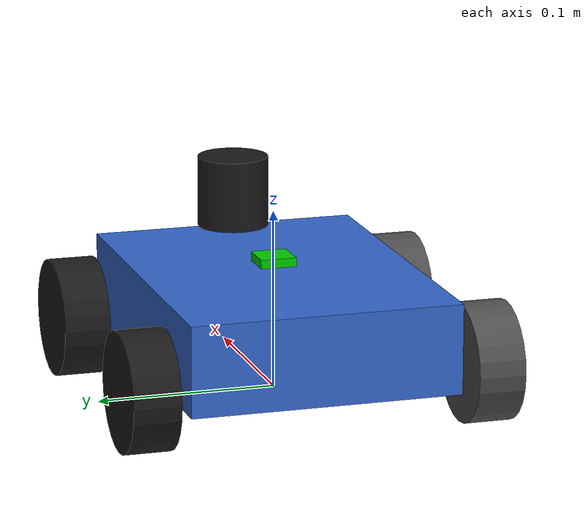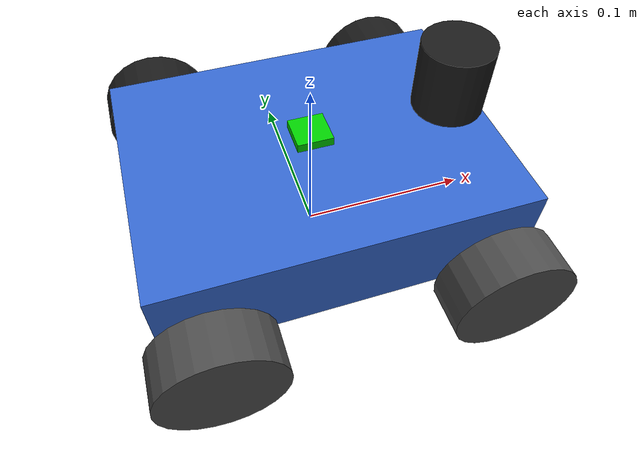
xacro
<?xml version="1.0"?>
<robot name="yahboom_car" xmlns:xacro="http://www.ros.org/wiki/xacro">

  <xacro:property name="chassis_length" value="0.20"/>   <!-- 20cm -->
  <xacro:property name="chassis_width"  value="0.15"/>   <!-- 15cm -->
  <xacro:property name="chassis_height" value="0.05"/>   <!-- 5cm  -->
  <xacro:property name="chassis_mass"   value="1.0"/>    <!-- 1 kg -->

  <xacro:property name="wheel_radius"   value="0.033"/>  <!-- 3.3cm bán kính bánh -->
  <xacro:property name="wheel_width"    value="0.026"/>  <!-- 2.6cm độ dày bánh -->
  <xacro:property name="wheel_mass"     value="0.1"/>    <!-- 100g mỗi bánh -->

  <!-- Khoảng cách từ tâm chassis đến tâm bánh -->
  <xacro:property name="wheel_x_offset" value="0.075"/> <!-- tiến/lùi so với center -->
  <xacro:property name="wheel_y_offset" value="0.095"/> <!-- trái/phải so với center (A+B trong kinematics) -->
  <xacro:property name="wheel_z_offset" value="-0.015"/><!-- bánh thấp hơn chassis -->

  <!-- ============================================================
       MACRO TÍNH QUÁN TÍNH (Inertia)
       ============================================================ -->
  <xacro:macro name="box_inertia" params="m x y z">
    <inertia  ixx="${m*(y*y+z*z)/12}" ixy="0" ixz="0"
              iyy="${m*(x*x+z*z)/12}" iyz="0"
              izz="${m*(x*x+y*y)/12}"/>
  </xacro:macro>

  <xacro:macro name="cylinder_inertia" params="m r h">
    <inertia  ixx="${m*(3*r*r+h*h)/12}" ixy="0" ixz="0"
              iyy="${m*(3*r*r+h*h)/12}" iyz="0"
              izz="${m*r*r/2}"/>
  </xacro:macro>

  <xacro:macro name="wheel" params="prefix x_sign y_sign">
    <link name="wheel_${prefix}_link">
      <visual>
        <origin xyz="0 0 0" rpy="${pi/2} 0 0"/>
        <geometry>
          <cylinder radius="${wheel_radius}" length="${wheel_width}"/>
        </geometry>
        <material name="wheel_color_${prefix}">
          <!-- Bánh trái: đen, bánh phải: xám đậm -->
          <xacro:if value="${y_sign > 0}">
            <color rgba="0.1 0.1 0.1 1.0"/>
          </xacro:if>
          <xacro:unless value="${y_sign > 0}">
            <color rgba="0.3 0.3 0.3 1.0"/>
          </xacro:unless>
        </material>
      </visual>
      <collision>
        <origin xyz="0 0 0" rpy="${pi/2} 0 0"/>
        <geometry>
          <cylinder radius="${wheel_radius}" length="${wheel_width}"/>
        </geometry>
      </collision>
      <inertial>
        <origin xyz="0 0 0" rpy="${pi/2} 0 0"/>
        <mass value="${wheel_mass}"/>
        <xacro:cylinder_inertia m="${wheel_mass}" r="${wheel_radius}" h="${wheel_width}"/>
      </inertial>
    </link>

    <joint name="wheel_${prefix}_joint" type="continuous">
      <parent link="base_link"/>
      <child  link="wheel_${prefix}_link"/>
      <origin xyz="${x_sign * wheel_x_offset}
                   ${y_sign * wheel_y_offset}
                   ${wheel_z_offset}"
              rpy="0 0 0"/>
      <axis xyz="0 1 0"/>
      <!-- Giới hạn moment để tránh Gazebo unstable -->
      <limit effort="10.0" velocity="20.0"/>
      <dynamics damping="0.02" friction="0.1"/>
    </joint>

    <!-- Gazebo friction material cho bánh -->
    <gazebo reference="wheel_${prefix}_link">
      <mu1>1.5</mu1>
      <mu2>0.8</mu2>
      <kp>1e6</kp>
      <kd>1.0</kd>
      <material>Gazebo/DarkGray</material>
    </gazebo>
  </xacro:macro>

  <!-- ============================================================
       BASE LINK (CHASSIS)
       ============================================================ -->
  <link name="base_link">
    <visual>
      <origin xyz="0 0 0" rpy="0 0 0"/>
      <geometry>
        <box size="${chassis_length} ${chassis_width} ${chassis_height}"/>
      </geometry>
      <material name="chassis_blue">
        <color rgba="0.2 0.4 0.8 1.0"/>
      </material>
    </visual>
    <collision>
      <origin xyz="0 0 0" rpy="0 0 0"/>
      <geometry>
        <box size="${chassis_length} ${chassis_width} ${chassis_height}"/>
      </geometry>
    </collision>
    <inertial>
      <origin xyz="0 0 0" rpy="0 0 0"/>
      <mass value="${chassis_mass}"/>
      <xacro:box_inertia m="${chassis_mass}"
                          x="${chassis_length}"
                          y="${chassis_width}"
                          z="${chassis_height}"/>
    </inertial>
  </link>

  <gazebo reference="base_link">
    <material>Gazebo/Blue</material>
  </gazebo>

  <!-- Base footprint (gốc tọa độ robot trên mặt đất) -->
  <link name="base_footprint"/>
  <joint name="base_footprint_joint" type="fixed">
    <parent link="base_footprint"/>
    <child  link="base_link"/>
    <origin xyz="0 0 ${chassis_height/2 + wheel_radius + wheel_z_offset}" rpy="0 0 0"/>
  </joint>

  <xacro:wheel prefix="fl" x_sign=" 1" y_sign=" 1"/>  <!-- Motor1: trái trước  -->
  <xacro:wheel prefix="rl" x_sign="-1" y_sign=" 1"/>  <!-- Motor2: trái sau    -->
  <xacro:wheel prefix="fr" x_sign=" 1" y_sign="-1"/>  <!-- Motor3: phải trước  -->
  <xacro:wheel prefix="rr" x_sign="-1" y_sign="-1"/>  <!-- Motor4: phải sau    -->

  <!-- ============================================================
       IMU LINK (MPU6050 trong hệ thật)
       ============================================================ -->
  <link name="imu_link">
    <visual>
      <origin xyz="0 0 0" rpy="0 0 0"/>
      <geometry>
        <box size="0.02 0.02 0.005"/>
      </geometry>
      <material name="imu_green">
        <color rgba="0.0 0.8 0.0 1.0"/>
      </material>
    </visual>
    <inertial>
      <mass value="0.005"/>
      <inertia ixx="1e-6" ixy="0" ixz="0" iyy="1e-6" iyz="0" izz="1e-6"/>
    </inertial>
  </link>

  <joint name="imu_joint" type="fixed">
    <parent link="base_link"/>
    <child  link="imu_link"/>
    <origin xyz="0.0 0.0 ${chassis_height/2 + 0.005}" rpy="0 0 0"/>
  </joint>

  <!-- ============================================================
       LASER LINK (dự phòng cho RPLidar)
       ============================================================ -->
  <link name="laser_link">
    <visual>
      <origin xyz="0 0 0" rpy="0 0 0"/>
      <geometry>
        <cylinder radius="0.02" length="0.04"/>
      </geometry>
      <material name="laser_black">
        <color rgba="0.1 0.1 0.1 1.0"/>
      </material>
    </visual>
    <inertial>
      <mass value="0.1"/>
      <inertia ixx="1e-4" ixy="0" ixz="0" iyy="1e-4" iyz="0" izz="1e-4"/>
    </inertial>
  </link>

  <joint name="laser_joint" type="fixed">
    <parent link="base_link"/>
    <child  link="laser_link"/>
    <origin xyz="0.08 0.0 ${chassis_height/2 + 0.025}" rpy="0 0 0"/>
  </joint>

  <gazebo>
    <plugin name="yahboom_skid_steer_drive" filename="libgazebo_ros_skid_steer_drive.so">
      <!-- Namespace ROS 2 -->
      <ros>
        <namespace>/robot1</namespace>
        <remapping>cmd_vel:=cmd_vel</remapping>
        <remapping>odom:=gazebo/odom</remapping>
      </ros>

      <!-- Tần số publish odometry từ Gazebo (ground truth) -->
      <update_rate>50</update_rate>

      <!-- Tên 4 bánh xe khớp với joint names ở trên -->
      <left_front_joint>wheel_fl_joint</left_front_joint>
      <left_rear_joint>wheel_rl_joint</left_rear_joint>
      <right_front_joint>wheel_fr_joint</right_front_joint>
      <right_rear_joint>wheel_rr_joint</right_rear_joint>

      <!-- Thông số xe - khớp với mock_client.py -->
      <wheel_separation>${2 * wheel_y_offset}</wheel_separation>
      <wheel_diameter>${2 * wheel_radius}</wheel_diameter>

      <!-- Publish odometry + TF từ Gazebo (ground truth, so sánh với /odom) -->
      <publish_odom>true</publish_odom>
      <publish_odom_tf>false</publish_odom_tf>  <!-- Driver tự publish TF -->
      <publish_wheel_tf>true</publish_wheel_tf>

      <!-- Frame names -->
      <odometry_frame>odom</odometry_frame>
      <robot_base_frame>base_footprint</robot_base_frame>
    </plugin>
  </gazebo>

  <gazebo reference="imu_link">
    <sensor name="imu_sensor" type="imu">
      <always_on>true</always_on>
      <update_rate>100</update_rate>  <!-- 100Hz giống MPU6050 -->
      <visualize>false</visualize>
      <plugin name="imu_plugin" filename="libgazebo_ros_imu_sensor.so">
        <ros>
          <namespace>/robot1</namespace>
          <remapping>~/out:=imu/data_raw</remapping>
        </ros>
        <initial_orientation_as_reference>false</initial_orientation_as_reference>
        <!-- Gaussian noise mô phỏng nhiễu MPU6050 thật -->
        <gaussian_noise>0.01</gaussian_noise>
      </plugin>
    </sensor>

    <material>Gazebo/Green</material>
  </gazebo>

  <gazebo>
    <plugin name="joint_state_publisher" filename="libgazebo_ros_joint_state_publisher.so">
      <ros>
        <namespace>/robot1</namespace>
        <remapping>~/out:=joint_states</remapping>
      </ros>
      <update_rate>50</update_rate>
      <joint_name>wheel_fl_joint</joint_name>
      <joint_name>wheel_rl_joint</joint_name>
      <joint_name>wheel_fr_joint</joint_name>
      <joint_name>wheel_rr_joint</joint_name>
    </plugin>
  </gazebo>

</robot>
